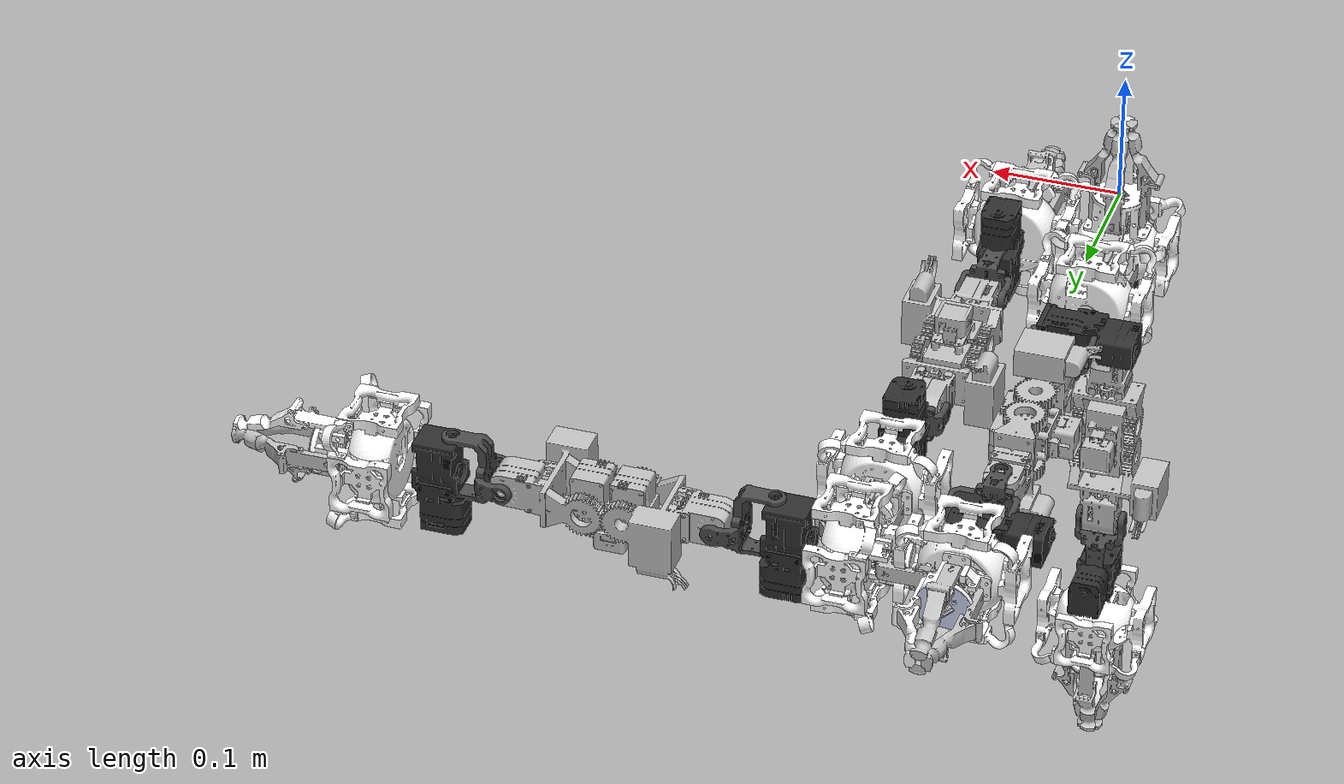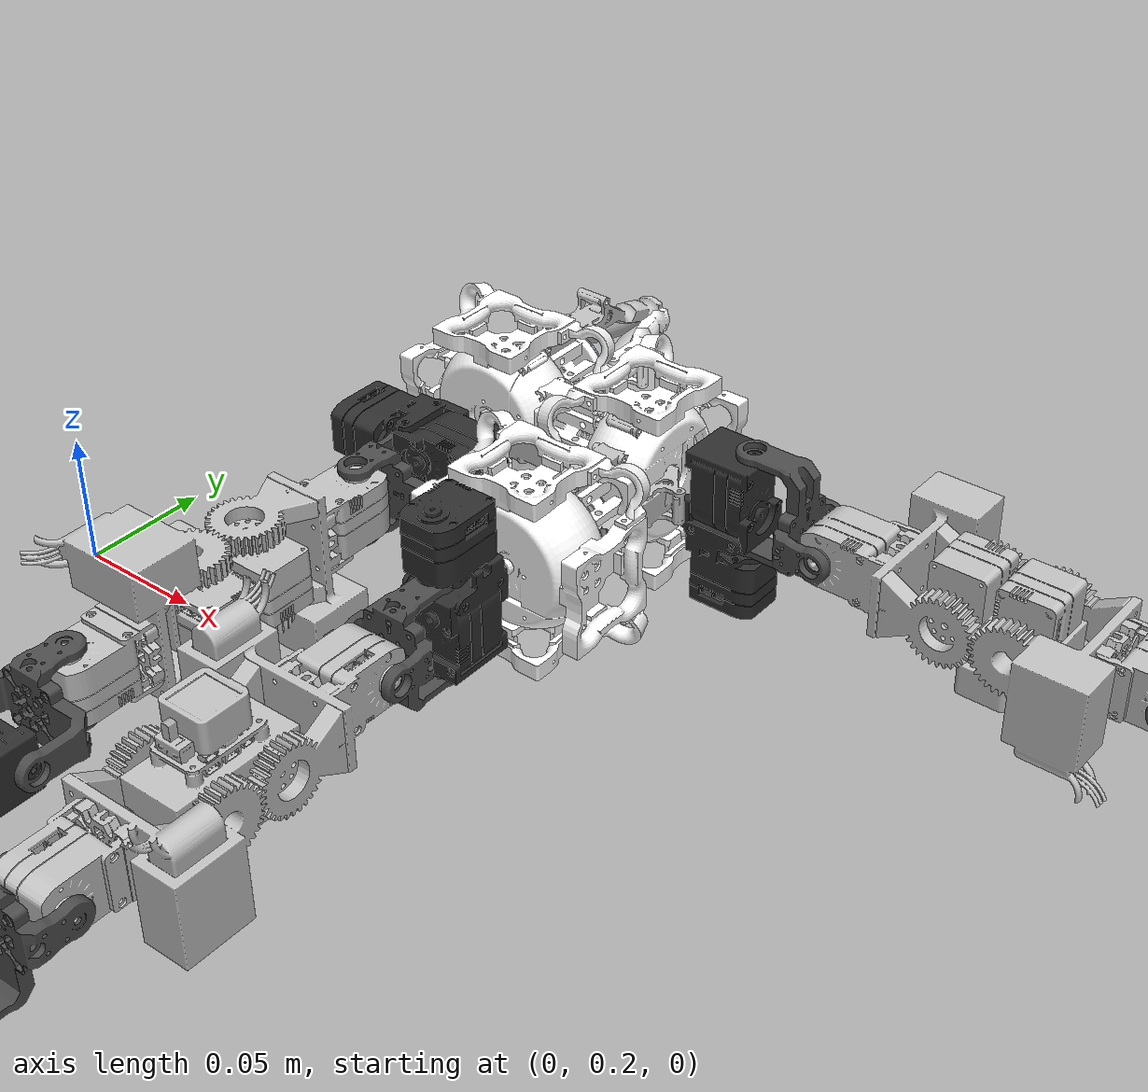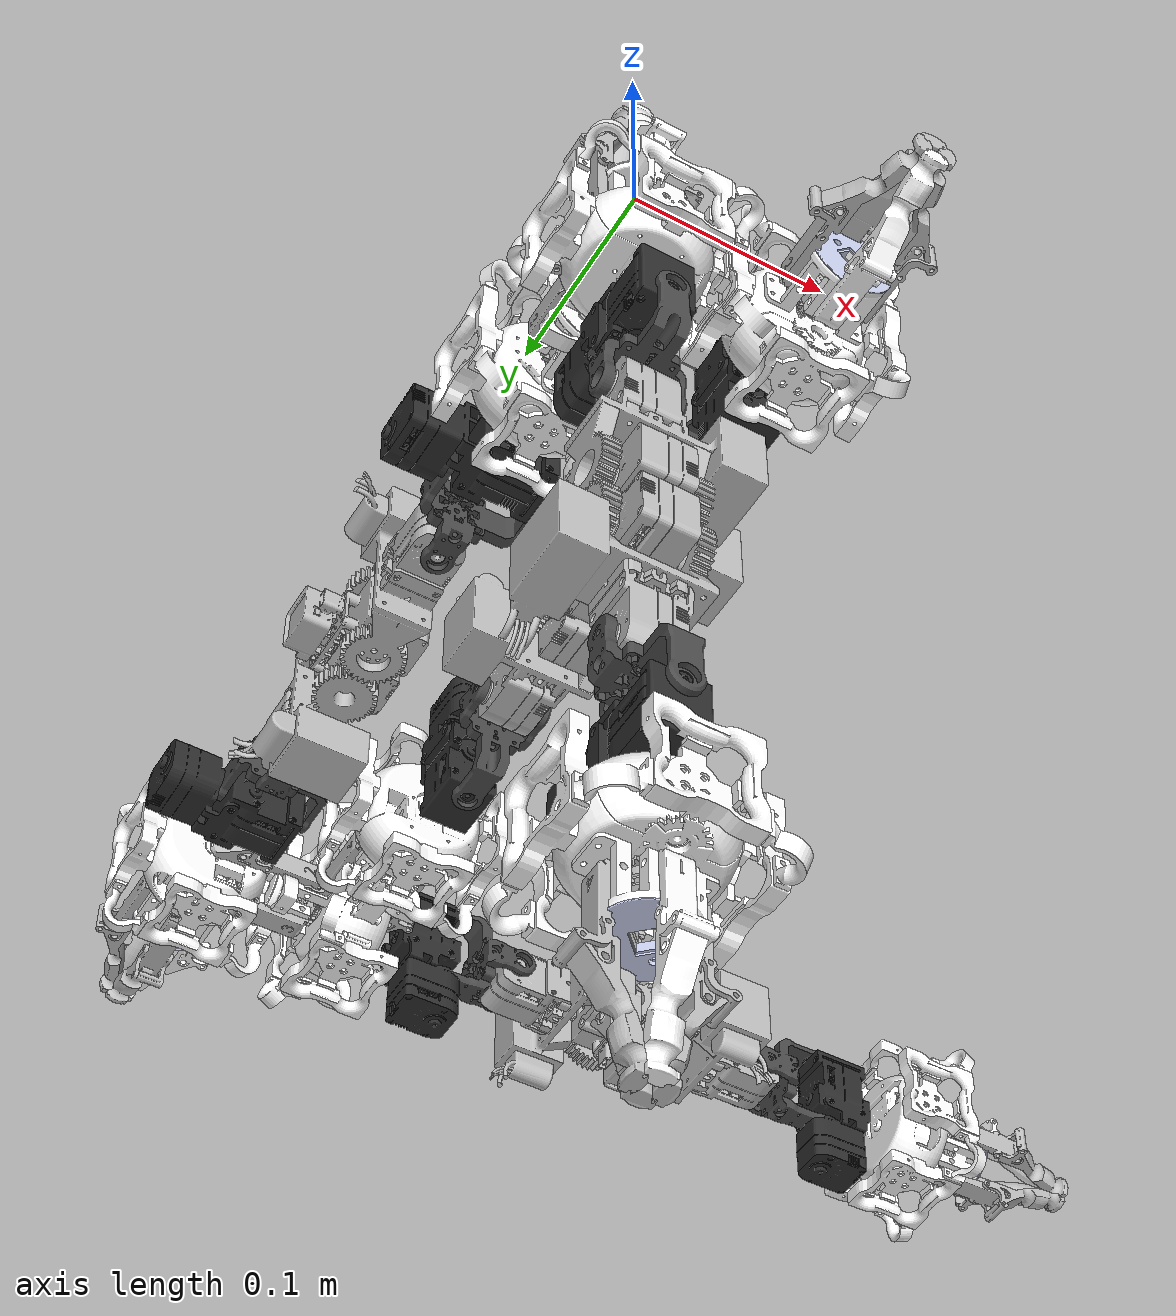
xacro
<?xml version='1.0' encoding='UTF-8'?>
<robot name="r8_tycoon_assem" xmlns:xacro="http://ros.org/wiki/xacro">

  <!-- Root of the module chain -->
  <link name="base_link"/>

  <!-- Griphis module -->
  <xacro:include filename="$(find griphis_xacro_stl)/urdf/griphis_xacro_stl_gripper1_modularized.xacro" />

  <xacro:griphis_xacro_stl
    prefix="griphis_0_"
    parent_link="base_link">
    <origin xyz="0 0 0" rpy="0 0 0"/>
  </xacro:griphis_xacro_stl>

  <xacro:griphis_xacro_stl
    prefix="griphis_1_"
    parent_link="griphis_0_nailring1-cp1">
    <origin xyz="0 0 0" rpy="0 0 0"/>
  </xacro:griphis_xacro_stl>

  <xacro:griphis_xacro_stl
    prefix="griphis_2_"
    parent_link="griphis_1_nailring2-cp3">
    <origin xyz="0 0 0" rpy="0 0 0"/>
  </xacro:griphis_xacro_stl>

  <xacro:griphis_xacro_stl
    prefix="griphis_3_"
    parent_link="griphis_2_nailring1-cp4">
    <origin xyz="0 0 0" rpy="0 0 0"/>
  </xacro:griphis_xacro_stl>

</robot>

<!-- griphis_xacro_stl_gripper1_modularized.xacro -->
<robot xmlns:xacro="http://ros.org/wiki/xacro" name="griphis_xacro_stl"><xacro:macro name="griphis_xacro_stl" params="prefix parent_link *origin">
        <joint name="${prefix}gripper-cp1_to_${parent_link}_joint" type="fixed">
            <parent link="${parent_link}"/>
            <child link="${prefix}gripper-cp1"/>
            <xacro:insert_block name="origin"/>
            </joint>
        <link name="${prefix}base_link">
            <inertial>
                <origin xyz="-0.00010264257406678 3.31727350517397E-05 -0.00495518296571391" rpy="0 0 0"/>
                <mass value="0.0797462541060097"/>
                <inertia ixx="8.57012114371153E-06" ixy="1.08293491537705E-08" ixz="-5.94275788505759E-09" iyy="1.05158543807875E-05" iyz="1.10583333432373E-08" izz="1.08869595154247E-05"/>
                </inertial>
            <visual>
                <origin xyz="-0.0148999999999995 0.0176000000000318 0.0109999999999849" rpy="0.0 -0.0 0.0"/>
                <geometry>
                    <mesh filename="package://griphis_xacro_stl/meshes/base_link.STL"/>
                    </geometry>
                <material name="">
                    <color rgba="0.752941176470588 0.752941176470588 0.752941176470588 1"/>
                    </material>
                </visual>
            <collision>
                <origin xyz="-0.0148999999999995 0.0176000000000318 0.0109999999999849" rpy="0.0 -0.0 0.0"/>
                <geometry>
                    <mesh filename="package://griphis_xacro_stl/meshes/base_link.STL"/>
                    </geometry>
                </collision>
            </link>
        <link name="${prefix}mid_pitch_1_link">
            <inertial>
                <origin xyz="0.0327517154872403 0.0322634011493343 0.000309410745622088" rpy="0 0 0"/>
                <mass value="0.0769353285466722"/>
                <inertia ixx="1.72122749770761E-05" ixy="1.01496940835006E-08" ixz="-9.64331189423188E-08" iyy="1.36641198773196E-05" iyz="5.60814889063421E-07" izz="1.63211688368785E-05"/>
                </inertial>
            <visual>
                <origin xyz="-0.0640000000000069 -0.0350999999999983 -0.0" rpy="0.0 -0.0 0.0"/>
                <geometry>
                    <mesh filename="package://griphis_xacro_stl/meshes/mid_pitch_1_link.STL"/>
                    </geometry>
                <material name="">
                    <color rgba="0.752941176470588 0.752941176470588 0.752941176470588 1"/>
                    </material>
                </visual>
            <collision>
                <origin xyz="-0.0640000000000069 -0.0350999999999983 -0.0" rpy="0.0 -0.0 0.0"/>
                <geometry>
                    <mesh filename="package://griphis_xacro_stl/meshes/mid_pitch_1_link.STL"/>
                    </geometry>
                </collision>
            </link>
        <joint name="${prefix}mid_pitch_1" type="continuous">
            <origin xyz="-0.0640000000000069 -0.0350999999999983 -0.0" rpy="0.0 -0.0 0.0"/>
            <parent link="${prefix}mid_pitch_1_link"/>
            <child link="${prefix}base_link"/>
            <axis xyz="-0.0 -1.0 -0.0"/>
            <limit effort="3" velocity="10"/>
            </joint>
        <link name="${prefix}pitch_1_link">
            <inertial>
                <origin xyz="0.0191893034316777 -0.017231596070573 -0.00342856576321433" rpy="0 0 0"/>
                <mass value="0.0105178263834885"/>
                <inertia ixx="5.84801171286377E-07" ixy="3.57321505354626E-09" ixz="8.8152444778668E-08" iyy="1.04603360596441E-06" iyz="-1.51990885783075E-13" izz="9.82964870358909E-07"/>
                </inertial>
            <visual>
                <origin xyz="-0.0420000000000015 0.0175000000000007 -0.0174999999999981" rpy="0.0 -0.0 0.0"/>
                <geometry>
                    <mesh filename="package://griphis_xacro_stl/meshes/pitch_1_link.STL"/>
                    </geometry>
                <material name="">
                    <color rgba="0.298039215686275 0.298039215686275 0.298039215686275 1"/>
                    </material>
                </visual>
            <collision>
                <origin xyz="-0.0420000000000015 0.0175000000000007 -0.0174999999999981" rpy="0.0 -0.0 0.0"/>
                <geometry>
                    <mesh filename="package://griphis_xacro_stl/meshes/pitch_1_link.STL"/>
                    </geometry>
                </collision>
            </link>
        <joint name="${prefix}pitch_1" type="continuous">
            <origin xyz="-0.0420000000000015 0.0175000000000007 -0.0174999999999981" rpy="0.0 -0.0 0.0"/>
            <parent link="${prefix}pitch_1_link"/>
            <child link="${prefix}mid_pitch_1_link"/>
            <axis xyz="-0.0 -1.0 -0.0"/>
            <limit effort="3" velocity="10"/>
            </joint>
        <link name="${prefix}yaw_1_link">
            <inertial>
                <origin xyz="0.00934924439107056 -1.17000596711048E-10 -0.0065657034112081" rpy="0 0 0"/>
                <mass value="0.0544535701857151"/>
                <inertia ixx="6.16082295678474E-06" ixy="-1.48642619322733E-08" ixz="3.66332313625793E-08" iyy="7.36782974228272E-06" iyz="-1.48634431569832E-08" izz="7.24406343523596E-06"/>
                </inertial>
            <visual>
                <origin xyz="-0.0279999999999981 -0.0 0.0175000000000002" rpy="0.0 -0.0 0.0"/>
                <geometry>
                    <mesh filename="package://griphis_xacro_stl/meshes/yaw_1_link.STL"/>
                    </geometry>
                <material name="">
                    <color rgba="0.180392156862745 0.180392156862745 0.180392156862745 1"/>
                    </material>
                </visual>
            <collision>
                <origin xyz="-0.0279999999999981 -0.0 0.0175000000000002" rpy="0.0 -0.0 0.0"/>
                <geometry>
                    <mesh filename="package://griphis_xacro_stl/meshes/yaw_1_link.STL"/>
                    </geometry>
                </collision>
            </link>
        <joint name="${prefix}yaw_1" type="continuous">
            <origin xyz="-0.0279999999999981 -0.0 0.0175000000000002" rpy="0.0 -0.0 0.0"/>
            <parent link="${prefix}yaw_1_link"/>
            <child link="${prefix}pitch_1_link"/>
            <axis xyz="-0.0 -0.0 1.0"/>
            <limit effort="3" velocity="10"/>
            </joint>
        <link name="${prefix}roll_1_link">
            <inertial>
                <origin xyz="0.0304847934275313 -0.000533683595524997 -0.000138763582684304" rpy="0 0 0"/>
                <mass value="0.0617238803473503"/>
                <inertia ixx="1.72112591146286E-05" ixy="-2.34655399562005E-07" ixz="1.72186999812855E-07" iyy="1.09105230206178E-05" iyz="3.90599560040266E-08" izz="1.62402505711448E-05"/>
                </inertial>
            <visual>
                <origin xyz="-0.00031819805152675406 0.000318198051528346 -0.0766999999999999" rpy="0.0 -1.5707963267948966 -1.5707963267948966"/>
                <geometry>
                    <mesh filename="package://griphis_xacro_stl/meshes/roll_1_link.STL"/>
                    </geometry>
                <material name="">
                    <color rgba="1 1 1 1"/>
                    </material>
                </visual>
            <collision>
                <origin xyz="-0.00031819805152675406 0.000318198051528346 -0.0766999999999999" rpy="0.0 -1.5707963267948966 -1.5707963267948966"/>
                <geometry>
                    <mesh filename="package://griphis_xacro_stl/meshes/roll_1_link.STL"/>
                    </geometry>
                </collision>
            </link>
        <joint name="${prefix}roll_1" type="continuous">
            <origin xyz="-0.00031819805152675406 0.000318198051528346 -0.0766999999999999" rpy="0.0 -1.5707963267948966 -1.5707963267948966"/>
            <parent link="${prefix}roll_1_link"/>
            <child link="${prefix}yaw_1_link"/>
            <axis xyz="1.0 -0.0 -0.0"/>
            <limit effort="3" velocity="10"/>
            </joint>
        <link name="${prefix}worm_1_link">
            <inertial>
                <origin xyz="0.00680389923417661 1.29536242400655E-05 5.52986221441856E-05" rpy="0 0 0"/>
                <mass value="0.00387257618784269"/>
                <inertia ixx="2.06264558567859E-07" ixy="1.13917098659222E-09" ixz="-8.28881114232565E-10" iyy="1.7113732321225E-07" iyz="4.18404893657738E-11" izz="1.71297030362022E-07"/>
                </inertial>
            <visual>
                <origin xyz="0 0 0" rpy="0 0 0"/>
                <geometry>
                    <mesh filename="package://griphis_xacro_stl/meshes/worm_1_link.STL"/>
                    </geometry>
                <material name="">
                    <color rgba="0.752941176470588 0.752941176470588 0.752941176470588 1"/>
                    </material>
                </visual>
            <collision>
                <origin xyz="0 0 0" rpy="0 0 0"/>
                <geometry>
                    <mesh filename="package://griphis_xacro_stl/meshes/worm_1_link.STL"/>
                    </geometry>
                </collision>
            </link>
        <joint name="${prefix}worm_rotate_1" type="continuous">
            <origin xyz="-0.00031819805152675406 0.00031819805152833553 -0.02969999999999999" rpy="-1.5707963267948963 -1.5707963267948966 0.0"/>
            <parent link="${prefix}roll_1_link"/>
            <child link="${prefix}worm_1_link"/>
            <axis xyz="1 0 0"/>
            <limit effort="15" velocity="10"/>
            </joint>
        <link name="${prefix}nail1_1_link">
            <inertial>
                <origin xyz="0.0375115559402243 -4.52381021421033E-05 0.000927613439051046" rpy="0 0 0"/>
                <mass value="0.00785451508753953"/>
                <inertia ixx="3.26792929870295E-07" ixy="2.23311778369799E-10" ixz="3.04391588566406E-07" iyy="1.76174668735888E-06" iyz="-8.7203716693621E-12" izz="1.60467609944965E-06"/>
                </inertial>
            <visual>
                <origin xyz="0 0 0" rpy="0 0 0"/>
                <geometry>
                    <mesh filename="package://griphis_xacro_stl/meshes/nail1_1_link.STL"/>
                    </geometry>
                <material name="">
                    <color rgba="1 1 1 1"/>
                    </material>
                </visual>
            <collision>
                <origin xyz="0 0 0" rpy="0 0 0"/>
                <geometry>
                    <mesh filename="package://griphis_xacro_stl/meshes/nail1_1_link.STL"/>
                    </geometry>
                </collision>
            </link>
        <joint name="${prefix}nail1_rotate_1" type="continuous">
            <origin xyz="-0.00031819805152675075 -0.014681801948467067 -0.019699999999999995" rpy="1.5707963267948433 -1.5707963267948966 0.0"/>
            <parent link="${prefix}roll_1_link"/>
            <child link="${prefix}nail1_1_link"/>
            <axis xyz="0 -1 0"/>
            <mimic joint="${prefix}worm_rotate_1" multiplier="0.091" offset="0"/>
            </joint>
        <link name="${prefix}nail2_1_link">
            <inertial>
                <origin xyz="0.0375922338704431 -0.000920668174592305 -5.01249966510589E-05" rpy="0 0 0"/>
                <mass value="0.00783920613274618"/>
                <inertia ixx="3.26764420600123E-07" ixy="-3.04083796030301E-07" ixz="3.01596352148099E-10" iyy="1.60307023285989E-06" iyz="-3.50228545349602E-11" izz="1.7600802033745E-06"/>
                </inertial>
            <visual>
                <origin xyz="0 0 0" rpy="0 0 0"/>
                <geometry>
                    <mesh filename="package://griphis_xacro_stl/meshes/nail2_1_link.STL"/>
                    </geometry>
                <material name="">
                    <color rgba="0.752941176470588 0.752941176470588 0.752941176470588 1"/>
                    </material>
                </visual>
            <collision>
                <origin xyz="0 0 0" rpy="0 0 0"/>
                <geometry>
                    <mesh filename="package://griphis_xacro_stl/meshes/nail2_1_link.STL"/>
                    </geometry>
                </collision>
            </link>
        <joint name="${prefix}nail2_rotate_1" type="continuous">
            <origin xyz="-0.015318198051535455 0.00031819805152833 -0.019699999999999995" rpy="-1.5707963267948963 -1.5707963267948966 0.0"/>
            <parent link="${prefix}roll_1_link"/>
            <child link="${prefix}nail2_1_link"/>
            <axis xyz="0 0 -1"/>
            <mimic joint="${prefix}worm_rotate_1" multiplier="0.091" offset="0"/>
            </joint>
        <link name="${prefix}nail3_1_link">
            <inertial>
                <origin xyz="0.0376633576375596 -4.50239708446043E-05 0.000912382199221681" rpy="0 0 0"/>
                <mass value="0.00782164323980883"/>
                <inertia ixx="3.26387568167113E-07" ixy="1.94469452026803E-10" ixz="3.03929104031752E-07" iyy="1.75640452707706E-06" iyz="-1.77166863072923E-11" izz="1.59916689354216E-06"/>
                </inertial>
            <visual>
                <origin xyz="0 0 0" rpy="0 0 0"/>
                <geometry>
                    <mesh filename="package://griphis_xacro_stl/meshes/nail3_1_link.STL"/>
                    </geometry>
                <material name="">
                    <color rgba="0.752941176470588 0.752941176470588 0.752941176470588 1"/>
                    </material>
                </visual>
            <collision>
                <origin xyz="0 0 0" rpy="0 0 0"/>
                <geometry>
                    <mesh filename="package://griphis_xacro_stl/meshes/nail3_1_link.STL"/>
                    </geometry>
                </collision>
            </link>
        <joint name="${prefix}nail3_rotate_1" type="continuous">
            <origin xyz="-0.00031819805152675737 0.015318198051532934 -0.019700000000000092" rpy="-1.5707963267948963 -1.5707963267948966 0.0"/>
            <parent link="${prefix}roll_1_link"/>
            <child link="${prefix}nail3_1_link"/>
            <axis xyz="0 -1 0"/>
            <mimic joint="${prefix}worm_rotate_1" multiplier="0.091" offset="0"/>
            </joint>
        <link name="${prefix}nail4_1_link">
            <inertial>
                <origin xyz="0.0376199045292883 0.000916237603659741 4.27065705779009E-05" rpy="0 0 0"/>
                <mass value="0.00783130292561273"/>
                <inertia ixx="3.26490723468266E-07" ixy="3.0398859313737E-07" ixz="-4.37077734142467E-10" iyy="1.60061195688429E-06" iyz="2.94387193060157E-11" izz="1.75778452318195E-06"/>
                </inertial>
            <visual>
                <origin xyz="0 0 0" rpy="0 0 0"/>
                <geometry>
                    <mesh filename="package://griphis_xacro_stl/meshes/nail4_1_link.STL"/>
                    </geometry>
                <material name="">
                    <color rgba="0.752941176470588 0.752941176470588 0.752941176470588 1"/>
                    </material>
                </visual>
            <collision>
                <origin xyz="0 0 0" rpy="0 0 0"/>
                <geometry>
                    <mesh filename="package://griphis_xacro_stl/meshes/nail4_1_link.STL"/>
                    </geometry>
                </collision>
            </link>
        <joint name="${prefix}nail4_rotate_1" type="continuous">
            <origin xyz="0.014681801948464546 0.00031819805152833667 -0.019699999999999995" rpy="-1.5707963267948963 -1.5707963267948966 0.0"/>
            <parent link="${prefix}roll_1_link"/>
            <child link="${prefix}nail4_1_link"/>
            <axis xyz="0 0 1"/>
            <mimic joint="${prefix}worm_rotate_1" multiplier="0.091" offset="0"/>
            </joint>
        <link name="${prefix}nail-cp1">
            <inertial>
                <origin xyz="-2.058274506931E-05 -0.000405813357968389 -0.0658092329631552" rpy="0 0 0"/>
                <mass value="0.0011585387013778"/>
                <inertia ixx="1.05682260080874E-07" ixy="-1.5764583148915E-09" ixz="-7.53303890952621E-11" iyy="1.05682260080874E-07" iyz="7.53303890952626E-11" izz="2.1081276337663E-07"/>
                </inertial>
            <visual>
                <origin xyz="0 0 0" rpy="0 0 0"/>
                <geometry>
                    <mesh filename="package://griphis_xacro_stl/meshes/nail-cp1.STL"/>
                    </geometry>
                <material name="">
                    <color rgba="1 1 1 1"/>
                    </material>
                </visual>
            <collision>
                <origin xyz="0 0 0" rpy="0 0 0"/>
                <geometry>
                    <mesh filename="package://griphis_xacro_stl/meshes/nail-cp1.STL"/>
                    </geometry>
                </collision>
            </link>
        <joint name="${prefix}nail-cp1" type="fixed">
            <origin xyz="-0.000636396103034807 0.00020999999999474846 0.0650000000000001" rpy="6.4948046940571666e-15 3.774758283725532e-15 -3.141592653589793"/>
            <parent link="${prefix}roll_1_link"/>
            <child link="${prefix}nail-cp1"/>
            <axis xyz="0 0 0"/>
            </joint>
        <link name="${prefix}gripper-cp1">
            <inertial>
                <origin xyz="-0.000249014516100668 -0.00102239026541428 -0.0133818116212472" rpy="0 0 0"/>
                <mass value="0.0105278029927928"/>
                <inertia ixx="2.49426973639437E-06" ixy="-4.53009756265879E-08" ixz="6.75736959711176E-08" iyy="2.70040122944883E-06" iyz="-2.88247256637324E-07" izz="2.67368335360225E-06"/>
                </inertial>
            <visual>
                <origin xyz="0 0 0" rpy="0 0 0"/>
                <geometry>
                    <mesh filename="package://griphis_xacro_stl/meshes/gripper-cp1.STL"/>
                    </geometry>
                <material name="">
                    <color rgba="1 1 1 1"/>
                    </material>
                </visual>
            <collision>
                <origin xyz="0 0 0" rpy="0 0 0"/>
                <geometry>
                    <mesh filename="package://griphis_xacro_stl/meshes/gripper-cp1.STL"/>
                    </geometry>
                </collision>
            </link>
        <joint name="${prefix}gripper-cp1" type="fixed">
            <origin xyz="0 0 0" rpy="0 0 0"/>
            <parent link="${prefix}gripper-cp1"/>
            <child link="${prefix}roll_1_link"/>
            <axis xyz="-0.0 -0.0 -0.0"/>
            </joint>
        <link name="${prefix}nailring1-cp1">
            <inertial>
                <origin xyz="0.000495209639942942 -2.15213012098869E-07 -0.00500225533856013" rpy="0 0 0"/>
                <mass value="0.00888435164177016"/>
                <inertia ixx="1.85848970375133E-06" ixy="4.08320407087235E-11" ixz="9.14133574374128E-10" iyy="1.88948158451332E-06" iyz="-1.8157617423749E-12" izz="3.47494887160992E-06"/>
                </inertial>
            <visual>
                <origin xyz="0 0 0" rpy="0 0 0"/>
                <geometry>
                    <mesh filename="package://griphis_xacro_stl/meshes/nailring1-cp1.STL"/>
                    </geometry>
                <material name="">
                    <color rgba="1 1 1 1"/>
                    </material>
                </visual>
            <collision>
                <origin xyz="0 0 0" rpy="0 0 0"/>
                <geometry>
                    <mesh filename="package://griphis_xacro_stl/meshes/nailring1-cp1.STL"/>
                    </geometry>
                </collision>
            </link>
        <joint name="${prefix}nailring1-cp1" type="fixed">
            <origin xyz="-0.0003181980515267614 0.033318198051532834 -0.048100053496672186" rpy="1.5707963267948433 -1.5707963267948966 0.0"/>
            <parent link="${prefix}roll_1_link"/>
            <child link="${prefix}nailring1-cp1"/>
            <axis xyz="0 0 0"/>
            </joint>
        <link name="${prefix}nailring1-cp2">
            <inertial>
                <origin xyz="0.000495209639943192 -2.15213011856008E-07 -0.00500225533855998" rpy="0 0 0"/>
                <mass value="0.00888435164177017"/>
                <inertia ixx="1.85848970375133E-06" ixy="4.08320407083519E-11" ixz="9.1413357437371E-10" iyy="1.88948158451332E-06" iyz="-1.81576174254404E-12" izz="3.47494887160992E-06"/>
                </inertial>
            <visual>
                <origin xyz="0 0 0" rpy="0 0 0"/>
                <geometry>
                    <mesh filename="package://griphis_xacro_stl/meshes/nailring1-cp2.STL"/>
                    </geometry>
                <material name="">
                    <color rgba="1 1 1 1"/>
                    </material>
                </visual>
            <collision>
                <origin xyz="0 0 0" rpy="0 0 0"/>
                <geometry>
                    <mesh filename="package://griphis_xacro_stl/meshes/nailring1-cp2.STL"/>
                    </geometry>
                </collision>
            </link>
        <joint name="${prefix}nailring1-cp2" type="fixed">
            <origin xyz="0.03268180194846475 0.00031819805152834697 -0.048100053496672394" rpy="-5.645484080218921e-14 -1.5707963057214722 0.0"/>
            <parent link="${prefix}roll_1_link"/>
            <child link="${prefix}nailring1-cp2"/>
            <axis xyz="0 0 0"/>
            </joint>
        <link name="${prefix}nailring1-cp3">
            <inertial>
                <origin xyz="-0.000495209639943185 2.1521301184213E-07 -0.00500225533856018" rpy="0 0 0"/>
                <mass value="0.00888435164177015"/>
                <inertia ixx="1.85848970375133E-06" ixy="4.08320407089207E-11" ixz="-9.14133574373382E-10" iyy="1.88948158451332E-06" iyz="1.81576174213503E-12" izz="3.47494887160991E-06"/>
                </inertial>
            <visual>
                <origin xyz="0 0 0" rpy="0 0 0"/>
                <geometry>
                    <mesh filename="package://griphis_xacro_stl/meshes/nailring1-cp3.STL"/>
                    </geometry>
                <material name="">
                    <color rgba="1 1 1 1"/>
                    </material>
                </visual>
            <collision>
                <origin xyz="0 0 0" rpy="0 0 0"/>
                <geometry>
                    <mesh filename="package://griphis_xacro_stl/meshes/nailring1-cp3.STL"/>
                    </geometry>
                </collision>
            </link>
        <joint name="${prefix}nailring1-cp3" type="fixed">
            <origin xyz="-0.00031819805152674674 -0.03268180194846797 -0.0482999465033276" rpy="-1.5707963267948963 -1.5707963267948966 0.0"/>
            <parent link="${prefix}roll_1_link"/>
            <child link="${prefix}nailring1-cp3"/>
            <axis xyz="0 0 0"/>
            </joint>
        <link name="${prefix}nailring1-cp4">
            <inertial>
                <origin xyz="-0.000495209639943033 2.15213012022542E-07 -0.00500225533856014" rpy="0 0 0"/>
                <mass value="0.00888435164177017"/>
                <inertia ixx="1.85848970375133E-06" ixy="4.08320407090649E-11" ixz="-9.14133574373576E-10" iyy="1.88948158451332E-06" iyz="1.81576174274984E-12" izz="3.47494887160992E-06"/>
                </inertial>
            <visual>
                <origin xyz="0 0 0" rpy="0 0 0"/>
                <geometry>
                    <mesh filename="package://griphis_xacro_stl/meshes/nailring1-cp4.STL"/>
                    </geometry>
                <material name="">
                    <color rgba="1 1 1 1"/>
                    </material>
                </visual>
            <collision>
                <origin xyz="0 0 0" rpy="0 0 0"/>
                <geometry>
                    <mesh filename="package://griphis_xacro_stl/meshes/nailring1-cp4.STL"/>
                    </geometry>
                </collision>
            </link>
        <joint name="${prefix}nailring1-cp4" type="fixed">
            <origin xyz="-0.03331819805153535 0.00031819805152833233 -0.048099946503327794" rpy="3.14159265358973 -1.5707963057214722 0.0"/>
            <parent link="${prefix}roll_1_link"/>
            <child link="${prefix}nailring1-cp4"/>
            <axis xyz="0 0 0"/>
            </joint>
        <link name="${prefix}mid_pitch_2_link">
            <inertial>
                <origin xyz="-0.0327473641033502 -0.0322605669359661 0.000309352298986196" rpy="0 0 0"/>
                <mass value="0.0769502016363242"/>
                <inertia ixx="1.72130959551283E-05" ixy="1.01485711646082E-08" ixz="9.64338520342348E-08" iyy="1.36643051799986E-05" iyz="-5.60812725052765E-07" izz="1.63206675803235E-05"/>
                </inertial>
            <visual>
                <origin xyz="0 0 0" rpy="0 0 0"/>
                <geometry>
                    <mesh filename="package://griphis_xacro_stl/meshes/mid_pitch_2_link.STL"/>
                    </geometry>
                <material name="">
                    <color rgba="0.752941176470588 0.752941176470588 0.752941176470588 1"/>
                    </material>
                </visual>
            <collision>
                <origin xyz="0 0 0" rpy="0 0 0"/>
                <geometry>
                    <mesh filename="package://griphis_xacro_stl/meshes/mid_pitch_2_link.STL"/>
                    </geometry>
                </collision>
            </link>
        <joint name="${prefix}mid_pitch_2" type="continuous">
            <origin xyz="-0.029900000000000003 0.0352000000000001 0.0002100000000035008" rpy="0.0 0.0 0.0"/>
            <parent link="${prefix}base_link"/>
            <child link="${prefix}mid_pitch_2_link"/>
            <axis xyz="0 -1 0"/>
            <limit effort="3" velocity="10"/>
            <mimic joint="${prefix}mid_pitch_1" multiplier="1" offset="0"/>
            </joint>
        <link name="${prefix}pitch_2_link">
            <inertial>
                <origin xyz="-0.0191893034316743 0.0172315960705706 -0.00342856576323701" rpy="0 0 0"/>
                <mass value="0.0105178263834885"/>
                <inertia ixx="5.84801171286379E-07" ixy="3.57321505353334E-09" ixz="-8.81524447786701E-08" iyy="1.04603360596441E-06" iyz="1.51990880905164E-13" izz="9.82964870358905E-07"/>
                </inertial>
            <visual>
                <origin xyz="0 0 0" rpy="0 0 0"/>
                <geometry>
                    <mesh filename="package://griphis_xacro_stl/meshes/pitch_2_link.STL"/>
                    </geometry>
                <material name="">
                    <color rgba="0.298039215686275 0.298039215686275 0.298039215686275 1"/>
                    </material>
                </visual>
            <collision>
                <origin xyz="0 0 0" rpy="0 0 0"/>
                <geometry>
                    <mesh filename="package://griphis_xacro_stl/meshes/pitch_2_link.STL"/>
                    </geometry>
                </collision>
            </link>
        <joint name="${prefix}pitch_2" type="continuous">
            <origin xyz="-0.0640000000000067 -0.0350999999999972 0" rpy="0 0 0"/>
            <parent link="${prefix}mid_pitch_2_link"/>
            <child link="${prefix}pitch_2_link"/>
            <axis xyz="0 1 0"/>
            <limit effort="3" velocity="10"/>
            </joint>
        <link name="${prefix}yaw_2_link">
            <inertial>
                <origin xyz="-0.00934924449476787 -1.20738749553873E-09 -0.00656570463247875" rpy="0 0 0"/>
                <mass value="0.0544536529144548"/>
                <inertia ixx="6.1608306877813E-06" ixy="-1.48630786812854E-08" ixz="-3.66333645918454E-08" iyy="7.36783210634451E-06" iyz="1.48635489875795E-08" izz="7.24407314817233E-06"/>
                </inertial>
            <visual>
                <origin xyz="0 0 0" rpy="0 0 0"/>
                <geometry>
                    <mesh filename="package://griphis_xacro_stl/meshes/yaw_2_link.STL"/>
                    </geometry>
                <material name="">
                    <color rgba="0.180392156862745 0.180392156862745 0.180392156862745 1"/>
                    </material>
                </visual>
            <collision>
                <origin xyz="0 0 0" rpy="0 0 0"/>
                <geometry>
                    <mesh filename="package://griphis_xacro_stl/meshes/yaw_2_link.STL"/>
                    </geometry>
                </collision>
            </link>
        <joint name="${prefix}yaw_2" type="continuous">
            <origin xyz="-0.0419999999999942 0.0175000000000631 0.0174999999999867" rpy="0 0 0"/>
            <parent link="${prefix}pitch_2_link"/>
            <child link="${prefix}yaw_2_link"/>
            <axis xyz="0 0 -1"/>
            <limit effort="3" velocity="10"/>
            </joint>
        <link name="${prefix}roll_2_link">
            <inertial>
                <origin xyz="-0.0304847934275298 0.000533683595516123 -0.000138763582688578" rpy="0 0 0"/>
                <mass value="0.0617238803473503"/>
                <inertia ixx="1.72112591146286E-05" ixy="-2.34655399562003E-07" ixz="-1.72186999812873E-07" iyy="1.09105230206178E-05" iyz="-3.90599560037894E-08" izz="1.62402505711448E-05"/>
                </inertial>
            <visual>
                <origin xyz="0 0 0" rpy="0 0 0"/>
                <geometry>
                    <mesh filename="package://griphis_xacro_stl/meshes/roll_2_link.STL"/>
                    </geometry>
                <material name="">
                    <color rgba="1 1 1 1"/>
                    </material>
                </visual>
            <collision>
                <origin xyz="0 0 0" rpy="0 0 0"/>
                <geometry>
                    <mesh filename="package://griphis_xacro_stl/meshes/roll_2_link.STL"/>
                    </geometry>
                </collision>
            </link>
        <joint name="${prefix}roll_2" type="continuous">
            <origin xyz="-0.0280000000000042 0 -0.0175000000000007" rpy="0 0 0"/>
            <parent link="${prefix}yaw_2_link"/>
            <child link="${prefix}roll_2_link"/>
            <axis xyz="-1 0 0"/>
            <limit effort="3" velocity="10"/>
            </joint>
        <link name="${prefix}worm_2_link">
            <inertial>
                <origin xyz="-0.00680389920380498 5.66707617536341E-05 3.76180533663562E-06" rpy="0 0 0"/>
                <mass value="0.00387257616321651"/>
                <inertia ixx="2.0626455720602E-07" ixy="6.3200237698076E-10" ixz="-1.25909856906162E-09" iyy="1.713062458146E-07" iyz="1.39152999506885E-11" izz="1.71128105557195E-07"/>
                </inertial>
            <visual>
                <origin xyz="0 0 0" rpy="0 0 0"/>
                <geometry>
                    <mesh filename="package://griphis_xacro_stl/meshes/worm_2_link.STL"/>
                    </geometry>
                <material name="">
                    <color rgba="0.752941176470588 0.752941176470588 0.752941176470588 1"/>
                    </material>
                </visual>
            <collision>
                <origin xyz="0 0 0" rpy="0 0 0"/>
                <geometry>
                    <mesh filename="package://griphis_xacro_stl/meshes/worm_2_link.STL"/>
                    </geometry>
                </collision>
            </link>
        <joint name="${prefix}worm_rotate_2" type="continuous">
            <origin xyz="-0.0470000000000015 0 0" rpy="0 0 0"/>
            <parent link="${prefix}roll_2_link"/>
            <child link="${prefix}worm_2_link"/>
            <axis xyz="0.737216674660088 0 0.675656402769279"/>
            <limit effort="15" velocity="10"/>
            </joint>
        <link name="${prefix}nail1_2_link">
            <inertial>
                <origin xyz="-0.0375115559402153 0.000154761897861344 -0.000927613439127735" rpy="0 0 0"/>
                <mass value="0.00785451508753956"/>
                <inertia ixx="3.26792929870324E-07" ixy="-2.23311778394515E-10" ixz="3.04391588566463E-07" iyy="1.76174668735889E-06" iyz="8.72037168507631E-12" izz="1.60467609944963E-06"/>
                </inertial>
            <visual>
                <origin xyz="0 0 0" rpy="0 0 0"/>
                <geometry>
                    <mesh filename="package://griphis_xacro_stl/meshes/nail1_2_link.STL"/>
                    </geometry>
                <material name="">
                    <color rgba="1 1 1 1"/>
                    </material>
                </visual>
            <collision>
                <origin xyz="0 0 0" rpy="0 0 0"/>
                <geometry>
                    <mesh filename="package://griphis_xacro_stl/meshes/nail1_2_link.STL"/>
                    </geometry>
                </collision>
            </link>
        <joint name="${prefix}nail1_rotate_2" type="continuous">
            <origin xyz="-0.0570000000000014 0 -0.0149999999999872" rpy="0 0 0"/>
            <parent link="${prefix}roll_2_link"/>
            <child link="${prefix}nail1_2_link"/>
            <axis xyz="0 -1 0"/>
            <mimic joint="${prefix}worm_rotate_2" multiplier="0.091" offset="0"/>
            </joint>
        <link name="${prefix}nail2_2_link">
            <inertial>
                <origin xyz="-0.0375922338704413 0.000920668174601659 0.000149875003347476" rpy="0 0 0"/>
                <mass value="0.00783920613274653"/>
                <inertia ixx="3.26764420600132E-07" ixy="-3.0408379603033E-07" ixz="-3.01596352109658E-10" iyy="1.60307023286001E-06" iyz="3.50228545423785E-11" izz="1.76008020337463E-06"/>
                </inertial>
            <visual>
                <origin xyz="0 0 0" rpy="0 0 0"/>
                <geometry>
                    <mesh filename="package://griphis_xacro_stl/meshes/nail2_2_link.STL"/>
                    </geometry>
                <material name="">
                    <color rgba="0.752941176470588 0.752941176470588 0.752941176470588 1"/>
                    </material>
                </visual>
            <collision>
                <origin xyz="0 0 0" rpy="0 0 0"/>
                <geometry>
                    <mesh filename="package://griphis_xacro_stl/meshes/nail2_2_link.STL"/>
                    </geometry>
                </collision>
            </link>
        <joint name="${prefix}nail2_rotate_2" type="continuous">
            <origin xyz="-0.0570000000000009 0.015 0" rpy="0 0 0"/>
            <parent link="${prefix}roll_2_link"/>
            <child link="${prefix}nail2_2_link"/>
            <axis xyz="0 0 -1"/>
            <mimic joint="${prefix}worm_rotate_2" multiplier="0.091" offset="0"/>
            </joint>
        <link name="${prefix}nail3_2_link">
            <inertial>
                <origin xyz="-0.0376633576375554 4.50239708458949E-05 0.000912382199144402" rpy="0 0 0"/>
                <mass value="0.00782164323980893"/>
                <inertia ixx="3.26387568167086E-07" ixy="1.94469452048084E-10" ixz="-3.03929104031706E-07" iyy="1.75640452707709E-06" iyz="1.77166863189614E-11" izz="1.59916689354222E-06"/>
                </inertial>
            <visual>
                <origin xyz="0 0 0" rpy="0 0 0"/>
                <geometry>
                    <mesh filename="package://griphis_xacro_stl/meshes/nail3_2_link.STL"/>
                    </geometry>
                <material name="">
                    <color rgba="0.752941176470588 0.752941176470588 0.752941176470588 1"/>
                    </material>
                </visual>
            <collision>
                <origin xyz="0 0 0" rpy="0 0 0"/>
                <geometry>
                    <mesh filename="package://griphis_xacro_stl/meshes/nail3_2_link.STL"/>
                    </geometry>
                </collision>
            </link>
        <joint name="${prefix}nail3_rotate_2" type="continuous">
            <origin xyz="-0.0570000000000004 0 0.0150000000000128" rpy="0 0 0"/>
            <parent link="${prefix}roll_2_link"/>
            <child link="${prefix}nail3_2_link"/>
            <axis xyz="0 1 0"/>
            <mimic joint="${prefix}worm_rotate_2" multiplier="0.091" offset="0"/>
            </joint>
        <link name="${prefix}nail4_2_link">
            <inertial>
                <origin xyz="-0.0376199045292857 -0.000916237603655147 -0.000157293429422369" rpy="0 0 0"/>
                <mass value="0.00783130292561298"/>
                <inertia ixx="3.26490723468276E-07" ixy="3.03988593137378E-07" ixz="4.37077734057104E-10" iyy="1.60061195688436E-06" iyz="-2.94387192594929E-11" izz="1.75778452318202E-06"/>
                </inertial>
            <visual>
                <origin xyz="0 0 0" rpy="0 0 0"/>
                <geometry>
                    <mesh filename="package://griphis_xacro_stl/meshes/nail4_2_link.STL"/>
                    </geometry>
                <material name="">
                    <color rgba="0.752941176470588 0.752941176470588 0.752941176470588 1"/>
                    </material>
                </visual>
            <collision>
                <origin xyz="0 0 0" rpy="0 0 0"/>
                <geometry>
                    <mesh filename="package://griphis_xacro_stl/meshes/nail4_2_link.STL"/>
                    </geometry>
                </collision>
            </link>
        <joint name="${prefix}nail4_rotate_2" type="continuous">
            <origin xyz="-0.0570000000000017 -0.0149999999999955 0" rpy="0 0 0"/>
            <parent link="${prefix}roll_2_link"/>
            <child link="${prefix}nail4_2_link"/>
            <axis xyz="0 0 1"/>
            <mimic joint="${prefix}worm_rotate_2" multiplier="0.091" offset="0"/>
            </joint>
        <link name="${prefix}nail-cp2">
            <inertial>
                <origin xyz="0.000615813357965365 -0.00061581335794697 -0.0658092329631574" rpy="0 0 0"/>
                <mass value="0.00115853870137781"/>
                <inertia ixx="1.05682260080874E-07" ixy="-1.5764583148907E-09" ixz="-7.53303890952508E-11" iyy="1.05682260080874E-07" iyz="7.53303890920378E-11" izz="2.10812763376632E-07"/>
                </inertial>
            <visual>
                <origin xyz="0 0 0" rpy="0 0 0"/>
                <geometry>
                    <mesh filename="package://griphis_xacro_stl/meshes/nail-cp2.STL"/>
                    </geometry>
                <material name="">
                    <color rgba="0.796078431372549 0.823529411764706 0.937254901960784 1"/>
                    </material>
                </visual>
            <collision>
                <origin xyz="0 0 0" rpy="0 0 0"/>
                <geometry>
                    <mesh filename="package://griphis_xacro_stl/meshes/nail-cp2.STL"/>
                    </geometry>
                </collision>
            </link>
        <joint name="${prefix}nail-cp2" type="fixed">
            <origin xyz="-0.141700000000001 -0.000318198051535531 -0.00031819805151536" rpy="-1.5707963267949 0 1.5707963267949"/>
            <parent link="${prefix}roll_2_link"/>
            <child link="${prefix}nail-cp2"/>
            <axis xyz="0 0 0"/>
            </joint>
        <link name="${prefix}gripper-cp2">
            <inertial>
                <origin xyz="0.000249014516096963 -0.00102239026539895 0.0133818116212488" rpy="0 0 0"/>
                <mass value="0.0105278029927927"/>
                <inertia ixx="2.49426973639434E-06" ixy="4.53009756265701E-08" ixz="6.75736959710746E-08" iyy="2.70040122944888E-06" iyz="2.88247256637327E-07" izz="2.67368335360219E-06"/>
                </inertial>
            <visual>
                <origin xyz="0 0 0" rpy="0 0 0"/>
                <geometry>
                    <mesh filename="package://griphis_xacro_stl/meshes/gripper-cp2.STL"/>
                    </geometry>
                <material name="">
                    <color rgba="1 1 1 1"/>
                    </material>
                </visual>
            <collision>
                <origin xyz="0 0 0" rpy="0 0 0"/>
                <geometry>
                    <mesh filename="package://griphis_xacro_stl/meshes/gripper-cp2.STL"/>
                    </geometry>
                </collision>
            </link>
        <joint name="${prefix}gripper-cp2" type="fixed">
            <origin xyz="-0.0766999999999999 -0.000318198051539618 -0.000318198051517046" rpy="-1.57079632679485 0 -1.57079632679489"/>
            <parent link="${prefix}roll_2_link"/>
            <child link="${prefix}gripper-cp2"/>
            <axis xyz="0 0 0"/>
            </joint>
        <link name="${prefix}nailring2-cp1">
            <inertial>
                <origin xyz="0.000495209639943872 -2.15213011231508E-07 -0.0050022553385601" rpy="0 0 0"/>
                <mass value="0.00888435164177013"/>
                <inertia ixx="1.85848970375132E-06" ixy="4.08320407075244E-11" ixz="9.14133574374455E-10" iyy="1.88948158451332E-06" iyz="-1.81576174187697E-12" izz="3.47494887160991E-06"/>
                </inertial>
            <visual>
                <origin xyz="0 0 0" rpy="0 0 0"/>
                <geometry>
                    <mesh filename="package://griphis_xacro_stl/meshes/nailring2-cp1.STL"/>
                    </geometry>
                <material name="">
                    <color rgba="1 1 1 1"/>
                    </material>
                </visual>
            <collision>
                <origin xyz="0 0 0" rpy="0 0 0"/>
                <geometry>
                    <mesh filename="package://griphis_xacro_stl/meshes/nailring2-cp1.STL"/>
                    </geometry>
                </collision>
            </link>
        <joint name="${prefix}nailring2-cp1" type="fixed">
            <origin xyz="-0.0285999465033246 0 0.0330000000000001" rpy="3.14159265358978 0 -3.14159238847494"/>
            <parent link="${prefix}roll_2_link"/>
            <child link="${prefix}nailring2-cp1"/>
            <axis xyz="0 0 0"/>
            </joint>
        <link name="${prefix}nailring2-cp2">
            <inertial>
                <origin xyz="0.000495209639942984 -2.15213012050297E-07 -0.00500225533856015" rpy="0 0 0"/>
                <mass value="0.00888435164177019"/>
                <inertia ixx="1.85848970375134E-06" ixy="4.08320407074391E-11" ixz="9.14133574373919E-10" iyy="1.88948158451332E-06" iyz="-1.81576174216739E-12" izz="3.47494887160993E-06"/>
                </inertial>
            <visual>
                <origin xyz="0 0 0" rpy="0 0 0"/>
                <geometry>
                    <mesh filename="package://griphis_xacro_stl/meshes/nailring2-cp2.STL"/>
                    </geometry>
                <material name="">
                    <color rgba="1 1 1 1"/>
                    </material>
                </visual>
            <collision>
                <origin xyz="0 0 0" rpy="0 0 0"/>
                <geometry>
                    <mesh filename="package://griphis_xacro_stl/meshes/nailring2-cp2.STL"/>
                    </geometry>
                </collision>
            </link>
        <joint name="${prefix}nailring2-cp2" type="fixed">
            <origin xyz="-0.0285999465033264 -0.0330000000000002 0" rpy="1.57079632679488 0 3.14159265358979"/>
            <parent link="${prefix}roll_2_link"/>
            <child link="${prefix}nailring2-cp2"/>
            <axis xyz="0 0 0"/>
            </joint>
        <link name="${prefix}nailring2-cp3">
            <inertial>
                <origin xyz="-0.000495209639942817 2.15213012078053E-07 -0.00500225533856008" rpy="0 0 0"/>
                <mass value="0.00888435164177013"/>
                <inertia ixx="1.85848970375132E-06" ixy="4.08320407098813E-11" ixz="-9.14133574373917E-10" iyy="1.88948158451331E-06" iyz="1.81576173997682E-12" izz="3.4749488716099E-06"/>
                </inertial>
            <visual>
                <origin xyz="0 0 0" rpy="0 0 0"/>
                <geometry>
                    <mesh filename="package://griphis_xacro_stl/meshes/nailring2-cp3.STL"/>
                    </geometry>
                <material name="">
                    <color rgba="1 1 1 1"/>
                    </material>
                </visual>
            <collision>
                <origin xyz="0 0 0" rpy="0 0 0"/>
                <geometry>
                    <mesh filename="package://griphis_xacro_stl/meshes/nailring2-cp3.STL"/>
                    </geometry>
                </collision>
            </link>
        <joint name="${prefix}nailring2-cp3" type="fixed">
            <origin xyz="-0.0284000534966716 0 -0.0330000000000008" rpy="0 0 3.14159238847493"/>
            <parent link="${prefix}roll_2_link"/>
            <child link="${prefix}nailring2-cp3"/>
            <axis xyz="0 0 0"/>
            </joint>
        <link name="${prefix}nailring2-cp4">
            <inertial>
                <origin xyz="-0.000495209639943039 2.15213012015603E-07 -0.00500225533856" rpy="0 0 0"/>
                <mass value="0.00888435164177014"/>
                <inertia ixx="1.85848970375133E-06" ixy="4.08320407107192E-11" ixz="-9.14133574373996E-10" iyy="1.88948158451331E-06" iyz="1.81576174170535E-12" izz="3.47494887160991E-06"/>
                </inertial>
            <visual>
                <origin xyz="0 0 0" rpy="0 0 0"/>
                <geometry>
                    <mesh filename="package://griphis_xacro_stl/meshes/nailring2-cp4.STL"/>
                    </geometry>
                <material name="">
                    <color rgba="1 1 1 1"/>
                    </material>
                </visual>
            <collision>
                <origin xyz="0 0 0" rpy="0 0 0"/>
                <geometry>
                    <mesh filename="package://griphis_xacro_stl/meshes/nailring2-cp4.STL"/>
                    </geometry>
                </collision>
            </link>
        <joint name="${prefix}nailring2-cp4" type="fixed">
            <origin xyz="-0.0286000534966706 0.0329999999999998 0" rpy="-1.57079632679492 0 3.14159265358979"/>
            <parent link="${prefix}roll_2_link"/>
            <child link="${prefix}nailring2-cp4"/>
            <axis xyz="0 0 0"/>
            </joint>
        </xacro:macro>
    </robot>
